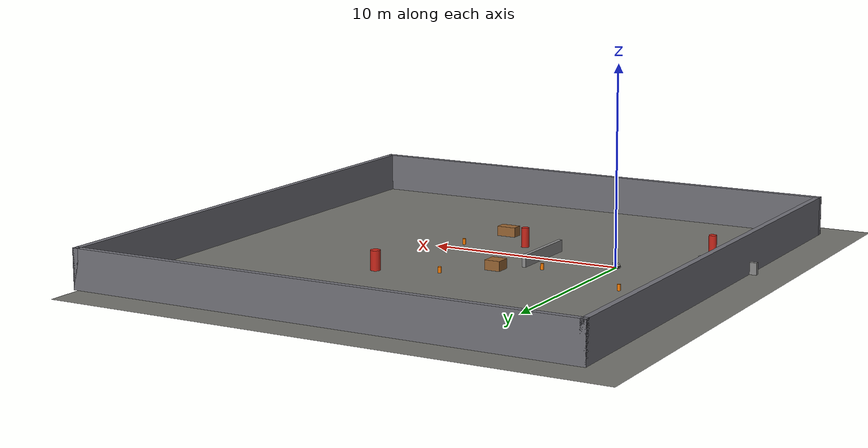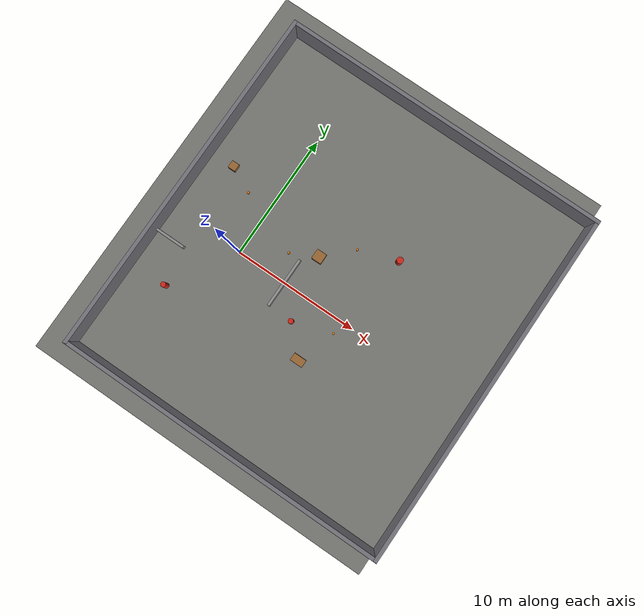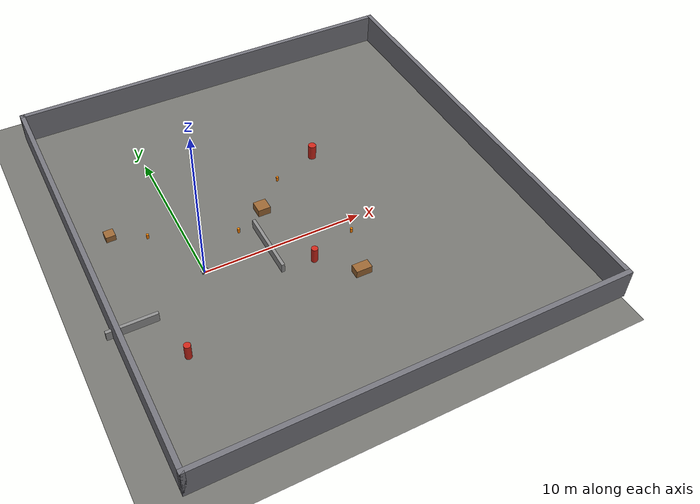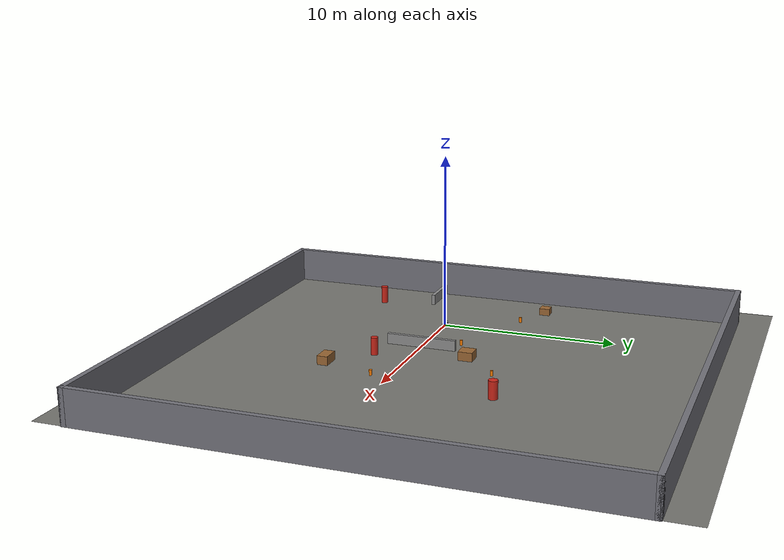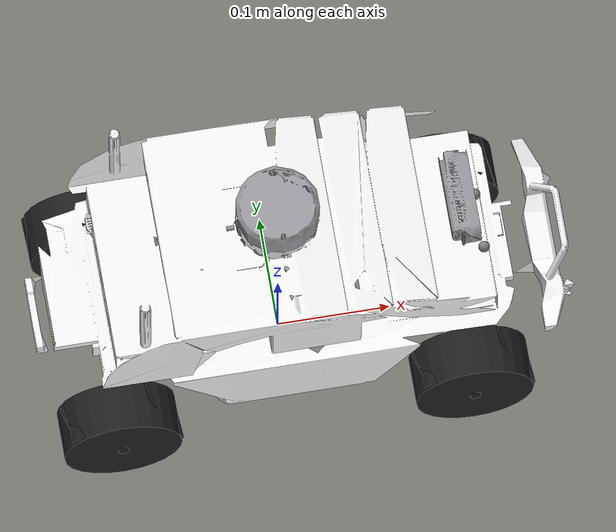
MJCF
<mujoco model="scorpio_plaza">

  <compiler angle="radian" autolimits="true" meshdir="../models/meshes"/>

  <visual>
    <global offwidth="1280" offheight="960"/>
  </visual>

  <option timestep="0.001" gravity="0 0 -9.81" integrator="RK4">
    <flag contact="enable"/>
  </option>

  <size nconmax="400" njmax="600"/>

  <default>
    <joint damping="0.01" frictionloss="0.001"/>
    <geom contype="1" conaffinity="1" friction="0.9 0.02 0.01"/>
  </default>

  <asset>
    <texture type="skybox" builtin="gradient" rgb1="0.45 0.55 0.7" rgb2="0.1 0.12 0.2" width="512" height="512"/>
    <texture name="ground_tex" type="2d" builtin="checker" rgb1="0.42 0.42 0.4" rgb2="0.5 0.5 0.48" width="512" height="512"/>
    <material name="ground_mat" texture="ground_tex" texrepeat="20 20"/>

    <material name="white_plastic" rgba="0.95 0.95 0.95 1" specular="0.3" shininess="0.5"/>
    <material name="black_rubber" rgba="0.12 0.12 0.12 1"/>
    <material name="dark_grey" rgba="0.35 0.35 0.38 1"/>
    <material name="aluminum" rgba="0.6 0.6 0.62 1" specular="0.5" shininess="0.7"/>
    <material name="sensor_black" rgba="0.08 0.08 0.08 1"/>

    <material name="wood" rgba="0.6 0.4 0.2 1"/>
    <material name="red_plastic" rgba="0.8 0.15 0.1 1"/>
    <material name="concrete" rgba="0.55 0.55 0.55 1"/>
    <material name="orange_cone" rgba="1.0 0.5 0.0 1"/>

    <mesh name="body_mesh" file="scorpio.obj"/>
    <mesh name="left_wheel_mesh" file="left_wheel.obj"/>
    <mesh name="right_wheel_mesh" file="right_wheel.obj"/>
    <mesh name="d435_mesh" file="d435.obj"/>
    <mesh name="ydlidar_g6_mesh" file="ydlidar_g6.obj"/>
  </asset>

  <worldbody>
    <light name="sun" pos="8 8 15" dir="-0.4 -0.4 -1" diffuse="0.9 0.9 0.85" specular="0.3 0.3 0.3" castshadow="true"/>
    <light name="fill" pos="-6 -6 8" dir="0.4 0.4 -1" diffuse="0.35 0.35 0.4"/>

    <geom name="ground" type="plane" size="20 20 0.1" material="ground_mat" contype="1" conaffinity="7"/>

    <!-- ==================== SCORPIO ROBOT ==================== -->
    <body name="base_footprint" pos="0 0 0">
      <freejoint name="base_freejoint"/>

      <body name="base_link" pos="0 0 0">

        <!-- 车体 (room_base_link): URDF joint origin (0,0,0), mesh 顶点自带 z=[0.0325, 0.3101] -->
        <body name="room_base_link" pos="0 0 0">
          <inertial pos="0 0 0.17" mass="3.5" fullinertia="0.035 0.035 0.05 0 0 0"/>
          <geom name="body_visual" type="mesh" mesh="body_mesh" pos="0 0 0"
                material="white_plastic" contype="0" conaffinity="0"/>
          <geom name="body_collision" type="box" pos="0 0 0.1463" size="0.211 0.095 0.1138"
                rgba="1 1 1 0" contype="1" conaffinity="4"/>
        </body>

        <!-- IMU: URDF origin (0.16, 0.04, 0.175) -->
        <site name="imu_site" pos="0.16 0.04 0.175" />

        <!-- 后轮 (驱动): URDF (±) x=-0.1575, y=±0.0928, z=0.0525 -->
        <body name="left_rear_wheel" pos="-0.1575 0.0928 0.0525">
          <joint name="left_rear_wheel_joint" type="hinge" axis="0 1 0" damping="0.01" frictionloss="0.001"/>
          <inertial pos="0 0 0" mass="0.3" fullinertia="0.0005 0.0005 0.0003 0 0 0"/>
          <geom name="lr_wheel_visual" type="mesh" mesh="left_wheel_mesh" pos="0 0 0" material="black_rubber" contype="0" conaffinity="0"/>
          <geom name="lr_wheel_collision" type="cylinder" size="0.0525 0.022" quat="0.707 0.707 0 0" material="black_rubber" friction="1.2 0.01 0.005" contype="1" conaffinity="4"/>
        </body>
        <body name="right_rear_wheel" pos="-0.1575 -0.0928 0.0525">
          <joint name="right_rear_wheel_joint" type="hinge" axis="0 1 0" damping="0.01" frictionloss="0.001"/>
          <inertial pos="0 0 0" mass="0.3" fullinertia="0.0005 0.0005 0.0003 0 0 0"/>
          <geom name="rr_wheel_visual" type="mesh" mesh="right_wheel_mesh" pos="0 0 0" material="black_rubber" contype="0" conaffinity="0"/>
          <geom name="rr_wheel_collision" type="cylinder" size="0.0525 0.022" quat="0.707 0.707 0 0" material="black_rubber" friction="1.2 0.01 0.005" contype="1" conaffinity="4"/>
        </body>

        <!-- 前轮 (转向): 转向体在前轴中心 (0.1575, 0, 0.0525) -->
        <body name="steering_assembly" pos="0.1575 0 0.0525">
          <joint name="steering_joint" type="hinge" axis="0 0 1" damping="0.5" frictionloss="0.02" range="-0.785 0.785"/>
          <inertial pos="0 0 0" mass="0.15" fullinertia="0.0001 0.0001 0.0001 0 0 0"/>
          <body name="left_front_wheel" pos="0 0.0928 0">
            <joint name="left_front_wheel_joint" type="hinge" axis="0 1 0" damping="0.01" frictionloss="0.001"/>
            <inertial pos="0 0 0" mass="0.3" fullinertia="0.0005 0.0005 0.0003 0 0 0"/>
            <geom name="lf_wheel_visual" type="mesh" mesh="left_wheel_mesh" pos="0 0 0" material="black_rubber" contype="0" conaffinity="0"/>
            <geom name="lf_wheel_collision" type="cylinder" size="0.0525 0.022" quat="0.707 0.707 0 0" material="black_rubber" friction="1.2 0.01 0.005" contype="1" conaffinity="4"/>
          </body>
          <body name="right_front_wheel" pos="0 -0.0928 0">
            <joint name="right_front_wheel_joint" type="hinge" axis="0 1 0" damping="0.01" frictionloss="0.001"/>
            <inertial pos="0 0 0" mass="0.3" fullinertia="0.0005 0.0005 0.0003 0 0 0"/>
            <geom name="rf_wheel_visual" type="mesh" mesh="right_wheel_mesh" pos="0 0 0" material="black_rubber" contype="0" conaffinity="0"/>
            <geom name="rf_wheel_collision" type="cylinder" size="0.0525 0.022" quat="0.707 0.707 0 0" material="black_rubber" friction="1.2 0.01 0.005" contype="1" conaffinity="4"/>
          </body>
        </body>

        <!-- YDLidar G6 360° 激光雷达 (0.12~16m, 720点, 12Hz)
             安装: 车体顶部平台 z=0.250, 扫描中心 z=0.2817 -->
        <body name="lidar_link" pos="0 0 0.250">
          <inertial pos="0 0 0.02" mass="0.41" fullinertia="6.8e-5 1.3e-4 7.2e-5 0 0 0"/>
          <geom name="lidar_body" type="mesh" mesh="ydlidar_g6_mesh" material="aluminum" contype="0" conaffinity="0"/>
          <site name="lidar_site" pos="0 0 0.03172" euler="0 0 0"/>
        </body>

        <!-- Intel RealSense D435: URDF mount (0.16,0,0.2295) → camera_link (0.1706,0.0175,0.242)
             相机光心置于前端玻璃处以避开自遮挡 -->
        <body name="d435_camera" pos="0.1706 0.0175 0.242">
          <inertial pos="0 0 0" mass="0.072" fullinertia="3.9e-3 5.0e-4 3.9e-3 0 0 0"/>
          <geom name="d435_visual" type="mesh" mesh="d435_mesh"
                pos="0.0043 -0.0175 0" quat="0.5 0.5 0.5 0.5"
                material="aluminum" contype="0" conaffinity="0"/>
          <geom name="d435_collision" type="box" size="0.012525 0.045 0.0125"
                pos="0 -0.0175 0" rgba="1 1 1 0" contype="1" conaffinity="1"/>
          <camera name="d435_depth" pos="0.005 -0.0175 0" quat="0.5 0.5 0.5 0.5" fovy="64" resolution="640 480"/>
          <camera name="d435_rgb"   pos="0.005 -0.0025 0" quat="0.5 0.5 0.5 0.5" fovy="42" resolution="640 480"/>
          <site name="d435_depth_site"   pos="0.005 -0.0175 0" euler="0 1.5708 0"/>
          <site name="d435_left_ir_site" pos="0.005 -0.0175 0" euler="0 1.5708 0"/>
          <site name="d435_right_ir_site" pos="0.005 -0.0675 0" euler="0 1.5708 0"/>
        </body>

      </body>
    </body>

    <!-- ==================== 外围墙壁 (便于 SLAM 建图) ==================== -->
    <!-- 房间范围: x∈[-6, 20], y∈[-12, 16], 墙高 2m -->
    <body name="perimeter_north" pos="7 16 1.0">
      <geom name="perim_n" type="box" size="13.15 0.15 1.0" rgba="0.45 0.45 0.48 1"/>
    </body>
    <body name="perimeter_south" pos="7 -12 1.0">
      <geom name="perim_s" type="box" size="13.15 0.15 1.0" rgba="0.45 0.45 0.48 1"/>
    </body>
    <body name="perimeter_east" pos="20 2 1.0">
      <geom name="perim_e" type="box" size="0.15 14.15 1.0" rgba="0.45 0.45 0.48 1"/>
    </body>
    <body name="perimeter_west" pos="-6 2 1.0">
      <geom name="perim_w" type="box" size="0.15 14.15 1.0" rgba="0.45 0.45 0.48 1"/>
    </body>

    <!-- ==================== 障碍物 ==================== -->

    <!-- 木箱 (可推动) -->
    <body name="box_wood_1" pos="5 3 0.25">
      <freejoint/><geom type="box" size="0.4 0.4 0.25" material="wood" mass="2.0"/>
    </body>
    <body name="box_wood_2" pos="8 -4 0.25">
      <freejoint/><geom type="box" size="0.5 0.3 0.25" material="wood" mass="2.5"/>
    </body>
    <body name="box_wood_3" pos="-4 5 0.2">
      <freejoint/><geom type="box" size="0.3 0.3 0.2" material="wood" mass="1.5"/>
    </body>

    <!-- 柱子 (固定) -->
    <body name="pillar_1" pos="6 -2 0.5"><geom type="cylinder" size="0.2 0.5" material="red_plastic"/></body>
    <body name="pillar_2" pos="-3 -5 0.5"><geom type="cylinder" size="0.2 0.5" material="red_plastic"/></body>
    <body name="pillar_3" pos="10 6 0.5"><geom type="cylinder" size="0.25 0.5" material="red_plastic"/></body>

    <!-- 矮墙 (固定) -->
    <body name="wall_low_1" pos="4 0 0.3"><geom type="box" size="0.1 2.0 0.3" material="concrete"/></body>
    <body name="wall_low_2" pos="-5 -2 0.3"><geom type="box" size="1.5 0.1 0.3" material="concrete"/></body>

    <!-- 锥桶 (可撞倒) -->
    <body name="cone_1" pos="3 2 0.15"><freejoint/><geom type="cylinder" size="0.08 0.15" material="orange_cone" mass="0.3"/></body>
    <body name="cone_2" pos="7 5 0.15"><freejoint/><geom type="cylinder" size="0.08 0.15" material="orange_cone" mass="0.3"/></body>
    <body name="cone_3" pos="-2 4 0.15"><freejoint/><geom type="cylinder" size="0.08 0.15" material="orange_cone" mass="0.3"/></body>
    <body name="cone_4" pos="9 -1 0.15"><freejoint/><geom type="cylinder" size="0.08 0.15" material="orange_cone" mass="0.3"/></body>

    <!-- 目标点 -->
    <body name="goal_marker" pos="12 8 0.01">
      <geom type="cylinder" size="0.4 0.02" rgba="0.1 0.8 0.2 0.7" contype="0" conaffinity="0" group="3"/>
      <geom type="cylinder" size="0.05 0.5" rgba="0.1 0.8 0.2 0.5" pos="0 0 0.5" contype="0" conaffinity="0" group="3"/>
      <site name="goal_site" pos="0 0 0"/>
    </body>

    <!-- 起点标记 -->
    <body name="start_marker" pos="0 0 0.01">
      <geom type="cylinder" size="0.3 0.005" rgba="0.2 0.4 0.9 0.6" contype="0" conaffinity="0" group="3"/>
    </body>
  </worldbody>

  <!-- 执行器: 后轮力矩驱动 + 前轮位置转向 -->
  <!-- 后轮速度闭环 (ctrl=rad/s, ±1.5Nm) + 前轮位置转向 -->
  <actuator>
    <velocity name="left_rear_motor" joint="left_rear_wheel_joint"
              kv="1.0" ctrlrange="-30 30" forcerange="-1.5 1.5"/>
    <velocity name="right_rear_motor" joint="right_rear_wheel_joint"
              kv="1.0" ctrlrange="-30 30" forcerange="-1.5 1.5"/>
    <position name="steering_actuator" joint="steering_joint" kp="60" kv="8" ctrlrange="-0.785 0.785"/>
  </actuator>

  <!-- 传感器 -->
  <sensor>
    <accelerometer name="imu_accel" site="imu_site"/>
    <gyro name="imu_gyro" site="imu_site"/>
    <jointpos name="enc_left_rear" joint="left_rear_wheel_joint"/>
    <jointpos name="enc_right_rear" joint="right_rear_wheel_joint"/>
    <jointvel name="vel_left_rear" joint="left_rear_wheel_joint"/>
    <jointvel name="vel_right_rear" joint="right_rear_wheel_joint"/>
    <jointpos name="enc_left_front" joint="left_front_wheel_joint"/>
    <jointpos name="enc_right_front" joint="right_front_wheel_joint"/>
    <jointpos name="steering_angle" joint="steering_joint"/>
    <framepos name="base_pos" objtype="body" objname="base_link"/>
    <framequat name="base_quat" objtype="body" objname="base_link"/>
    <framelinvel name="base_linvel" objtype="body" objname="base_link"/>
    <frameangvel name="base_angvel" objtype="body" objname="base_link"/>
    <framepos name="goal_pos" objtype="site" objname="goal_site"/>
    <!-- D435 深度测距 -->
    <rangefinder name="d435_depth_center" site="d435_depth_site"/>
    <rangefinder name="d435_depth_left" site="d435_left_ir_site"/>
    <rangefinder name="d435_depth_right" site="d435_right_ir_site"/>
  </sensor>
</mujoco>
